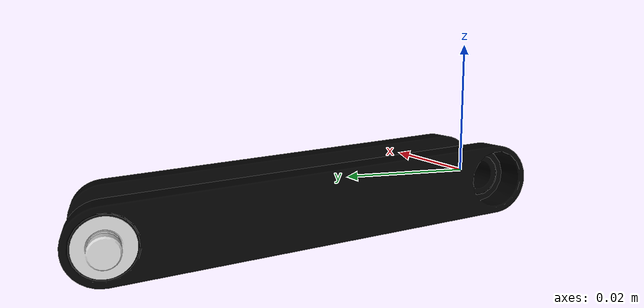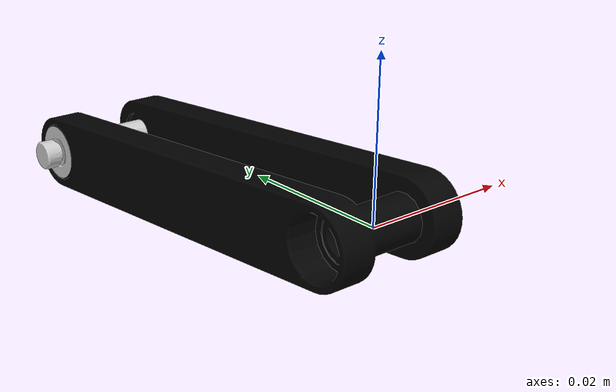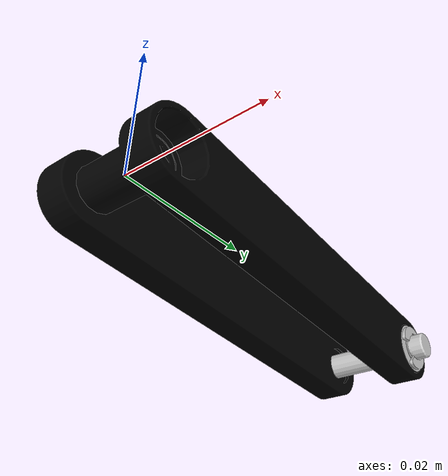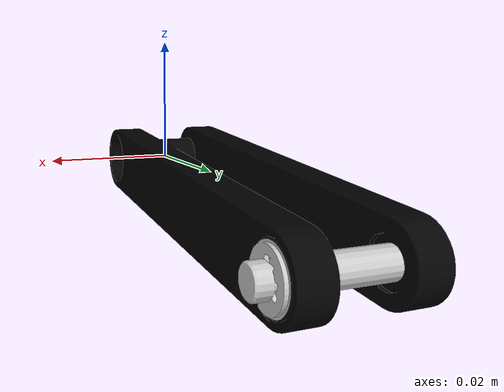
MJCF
<mujoco model="link_2">
  <default>
    <default class="visual">
      <geom group="2" type="mesh" contype="0" conaffinity="0"/>
    </default>
    <default class="collision">
      <geom group="3" type="mesh"/>
    </default>
  </default>
  <asset>
    <material name="black_metal" specular="0.5" shininess="0.49" rgba="0.010000 0.010000 0.010000 1.000000"/>
    <material name="silver" specular="0.5" shininess="0.49" rgba="0.800000 0.800000 0.800000 1.000000"/>
    <mesh file="link_2_0.obj"/>
    <mesh file="link_2_1.obj"/>
    <mesh file="link_2_collision_0.obj"/>
    <mesh file="link_2_collision_1.obj"/>
    <mesh file="link_2_collision_2.obj"/>
  </asset>
  <worldbody>
    <body name="link_2">
      <geom mesh="link_2_0" material="silver" class="visual"/>
      <geom mesh="link_2_1" material="black_metal" class="visual"/>
      <geom mesh="link_2_collision_0" rgba="0.29459914993353287 0.668805665544252 0.04956114909683218 1" class="collision"/>
      <geom mesh="link_2_collision_1" rgba="0.2623865001286084 0.22827595785040566 0.49136417513864583 1" class="collision"/>
      <geom mesh="link_2_collision_2" rgba="0.6760187835697699 0.13959649185078837 0.6095952399856515 1" class="collision"/>
    </body>
  </worldbody>
</mujoco>
